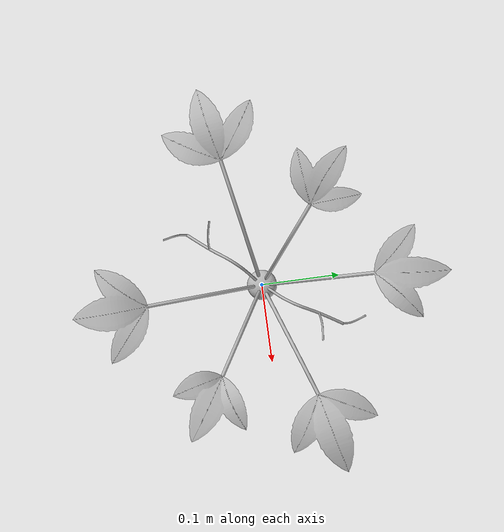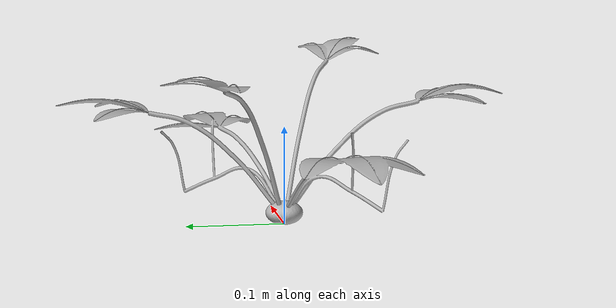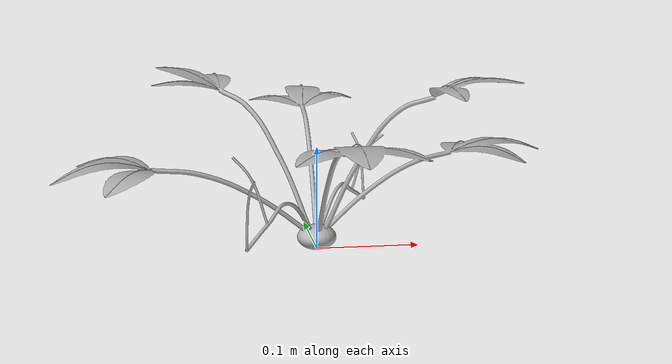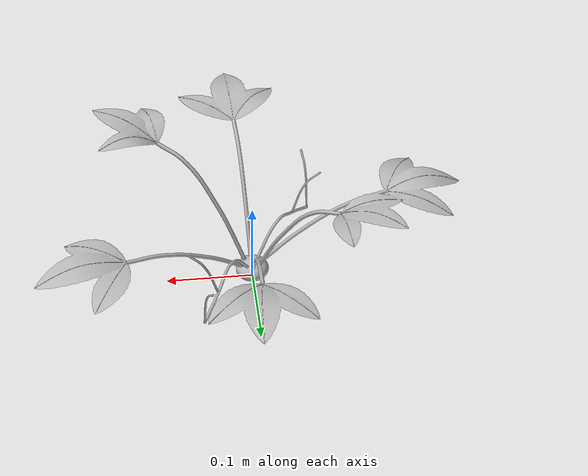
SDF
<?xml version="1.0"?>
<sdf version="1.10">
  <model name="strawberry_plant_v2">
    <static>true</static>
    <link name="plant_link">
      <collision name="crown_collision">
        <pose>0 0 0.012 0 0 0</pose>
        <geometry>
          <cylinder><radius>0.020</radius><length>0.024</length></cylinder>
        </geometry>
      </collision>
      <visual name="plant_visual">
        <geometry>
          <mesh>
            <uri>model://strawberry_plant_v2/meshes/strawberry_plant_v2.obj</uri>
          </mesh>
        </geometry>
      </visual>
    </link>
  </model>
</sdf>
